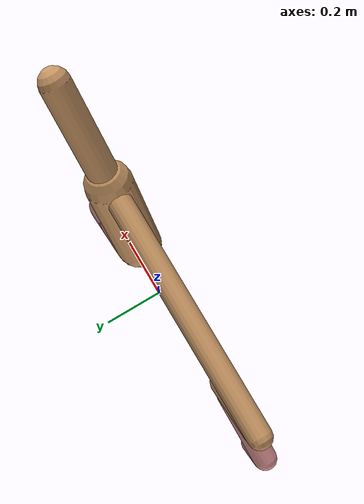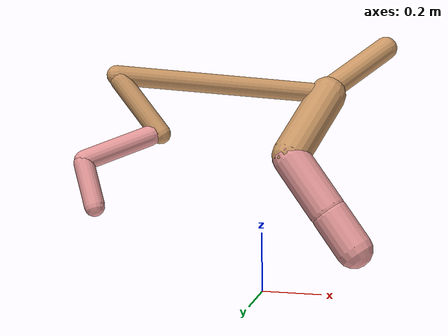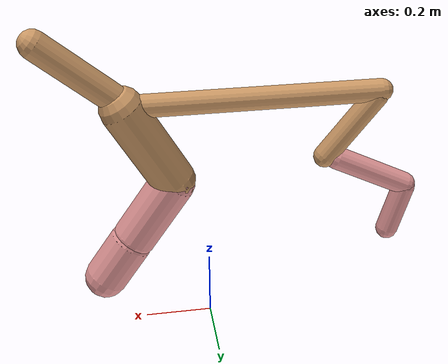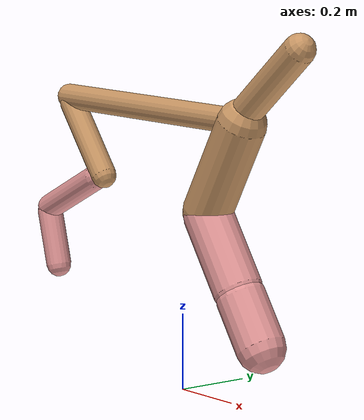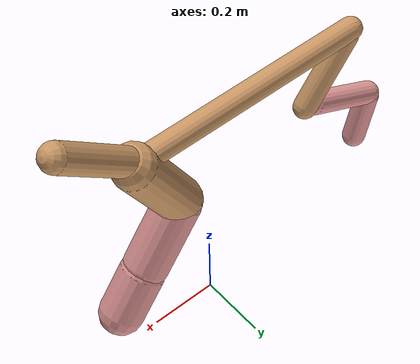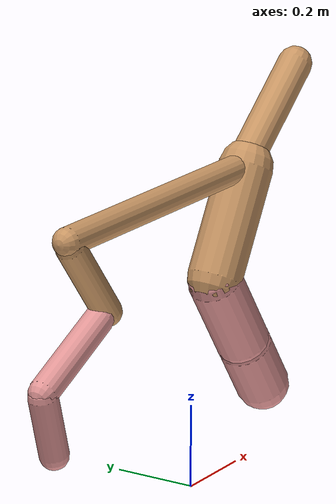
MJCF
<mujoco model="cheetah">
  <compiler angle="radian" coordinate="local" inertiafromgeom="true" settotalmass="14" />
  <default>
    <joint armature=".1" damping=".01" limited="true" solimplimit="0 .8 .03" solreflimit=".02 1" stiffness="8" />
    <geom conaffinity="0" condim="3" contype="1" friction="0.8 .1 .1" rgba="0.8 0.6 .4 1" solimp="0.0 0.8 0.01" solref="0.02 1" />
    <motor ctrllimited="true" ctrlrange="-1 1" />
  </default>
  <size nstack="300000" nuser_geom="1" />
  <option gravity="0 0 -9.81" timestep="0.01" />
  <worldbody>
    <body name="torso" pos="0.0 0.0 0.7240537943394182">
      <joint armature="0" axis="1 0 0" damping="0" limited="false" name="ignorex" pos="0 0 0" stiffness="0" type="slide" />
      <joint armature="0" axis="0 0 1" damping="0" limited="false" name="ignorez" pos="0 0 0" stiffness="0" type="slide" />
      <joint armature="0" axis="0 1 0" damping="0" limited="false" name="ignorey" pos="0 0 0" stiffness="0" type="hinge" />
      <geom fromto="-0.5 0.0 0.0 0.24033239148534208 0.0 0.0" name="torso" size="0.03345223641755811" type="capsule" />
      <geom axisangle="0 1 0 .87" name="head" pos="0.3403323914853421 0.0 0.1" size="0.04103577961332995 0.15" type="capsule" />

      <body name="bthigh" pos="-.5 0 0">
        <joint axis="0 1 0" damping="6" name="bthigh" pos="0 0 0" range="-.52 1.05" stiffness="240" type="hinge" />
        <geom axisangle="0 1 0 -3.8" name="bthigh" pos="0.08281761875952785 0.0 -0.10766290438738621" size="0.03403055564286685 0.11681879943118141" type="capsule" />
        <body name="bshin" pos="0.1256352375190557 0.0 -0.2053258087747724">
          <joint axis="0 1 0" damping="4.5" name="bshin" pos="0 0 0" range="-.785 .785" stiffness="180" type="hinge" />
          <geom axisangle="0 1 0 -2.03" name="bshin" pos="-0.11392479441678591 0.0 -0.056962397208392954" rgba="0.9 0.6 0.6 1" size="0.03403055564286685 0.1208470338943256" type="capsule" />
          <body name="bfoot" pos="-0.22784958883357181 0.0 -0.11392479441678591">
            <joint axis="0 1 0" damping="3" name="bfoot" pos="0 0 0" range="-.4 .785" stiffness="120" type="hinge" />
            <geom axisangle="0 1 0 -.27" name="bfoot" pos="0.024602006874303972 0.0 -0.07954648889358285" rgba="0.9 0.6 0.6 1" size="0.03403055564286685 0.07573080790711072" type="capsule" />
            <inertial mass="10" />
          </body>
        </body>
      </body>
      <body name="fthigh" pos="0.24033239148534213 0.0 0.0">
        <joint axis="0 1 0" damping="4.5" name="fthigh" pos="0 0 0" range="-1.5 0.8" stiffness="180" type="hinge" />
        <geom axisangle="0 1 0 .52" name="fthigh" pos="-0.07168615202182627 0.0 -0.12289054632313072" size="0.06468857319597963 0.13634639607441698" type="capsule" />
        <body name="fshin" pos="-0.14337230404365253 0.0 -0.24578109264626144">
          <joint axis="0 1 0" damping="3" name="fshin" pos="0 0 0" range="-1.2 1.1" stiffness="120" type="hinge" />
          <geom axisangle="0 1 0 -.6" name="fshin" pos="0.0665615340514681 0.0 -0.09216212407126351" rgba="0.9 0.6 0.6 1" size="0.06468857319597963 0.10866705251043758" type="capsule" />
          <body name="ffoot" pos="0.1331230681029362 0.0 -0.18432424814252701">
            <joint axis="0 1 0" damping="1.5" name="ffoot" pos="0 0 0" range="-3.1 -0.3" stiffness="60" type="hinge" />
            <geom axisangle="0 1 0 -.6" name="ffoot" pos="0.045952415305675086 0.0 -0.07148153491993904" rgba="0.9 0.6 0.6 1" size="0.06468857319597963 0.07176126109179841" type="capsule" />
            <inertial mass="10" />
          </body>
        </body>
      </body>
    </body>
  </worldbody>
  <actuator>
    <motor gear="120" joint="bthigh" name="bthigh" />
    <motor gear="90" joint="bshin" name="bshin" />
    <motor gear="60" joint="bfoot" name="bfoot" />
    <motor gear="120" joint="fthigh" name="fthigh" />
    <motor gear="60" joint="fshin" name="fshin" />
    <motor gear="30" joint="ffoot" name="ffoot" />
  </actuator>
</mujoco>
